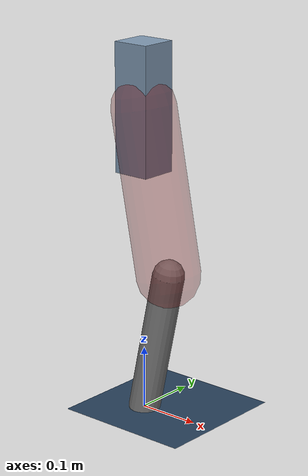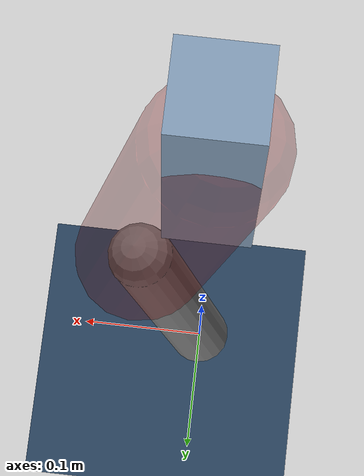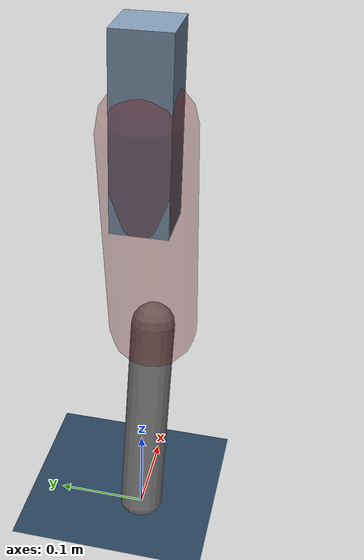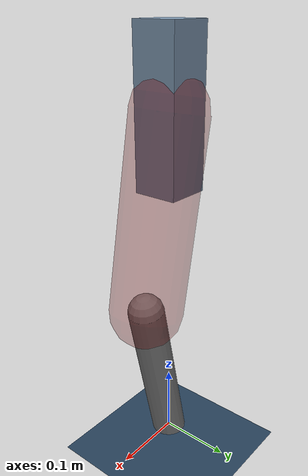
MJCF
<mujoco model="Hopper2D">
	<compiler inertiafromgeom="true" angle="radian" />
	<option timestep="0.001" integrator="implicit" cone="elliptic" solver="Newton" tolerance="1e-10" />

	<default>
		<geom contype="1" conaffinity="1" condim="3" friction="2 0.005 0.0001" solref="0.005 1" />
		<joint limited="true" damping="0.1" />
	</default>

	<asset>
		<texture name="skybox" type="skybox" builtin="gradient" rgb1=".4 .6 .8" rgb2="0 0 0" width="800" height="800" />
		<texture name="grid" type="2d" builtin="checker" rgb1=".1 .2 .3" rgb2=".2 .3 .4" width="300" height="300" mark="edge" markrgb=".2 .3 .4" />
		<material name="ground" texture="grid" texrepeat="1 1" texuniform="true" reflectance="0.1" />
		<material name="leg" rgba="0.5 0.6 0.7 1" />
	</asset>

	<worldbody>

		<geom name="floor" type="plane" size="5 5 0.25" material="ground" />

		<light directional="false" diffuse="0.8 0.8 0.8" specular="0.3 0.3 0.3" pos="0 0 2" dir="0 0 -1" />
		<light mode="targetbodycom" target="base" directional="false" diffuse="0.8 0.8 0.8" specular="0.3 0.3 0.3" pos="0 0 2" dir="0 0 -1" />

		<camera name="fixed" pos="0 -2 1" xyaxes="1 0 0 0 0 1" />
		<camera name="tracking" mode="trackcom" pos="0 -3 1" />

		<body name="root" pos="0 0 0.48484804761631584">
			<joint name="slide_x" type="slide" axis="1 0 0" range="-100 100" />
			<joint name="slide_z" type="slide" axis="0 0 1" range="0 10" />

			<body name="base" pos="0 0 0">
				<geom name="torso" type="box" size="0.03 0.03 0.1" mass="2.753" material="leg" />

				<body name="link1" pos="0 0 0" euler="0 1.3791262987595343 0">
					<joint type="hinge" axis="0 -1 0" pos="0 0 0" name="hinge1" limited="true" range="-3.14 3.14" stiffness="0" damping="0.1" />
					<geom name="thigh" type="capsule" fromto="0 0 0 0.2594699582742477 0 0" size="0.05" rgba="0.5 0 0 0.3" mass="0.881021891513044" />

					<body name="link2" pos="0.2594699582742477 0 0" euler="0 0.4032418002272246 0">
						<joint type="hinge" axis="0 -1 0" pos="0 0 0" name="hinge2" limited="true" range="-3.14 3.14" stiffness="0" damping="0.1" />
						<geom name="shank" type="capsule" fromto="0 0 0 0.2353780893420682 0 0" size="0.025" mass="0.43044028040786136" />

					</body>
				</body>
			</body>
		</body>
	</worldbody>

	<actuator>
		<motor name="torque1" joint="hinge1" ctrlrange="-76.34978005248654 76.34978005248654" ctrllimited="true" gear="1" />
		<motor name="torque2" joint="hinge2" ctrlrange="-127.80524328931986 127.80524328931986" ctrllimited="true" gear="1" />
	</actuator>
</mujoco>
